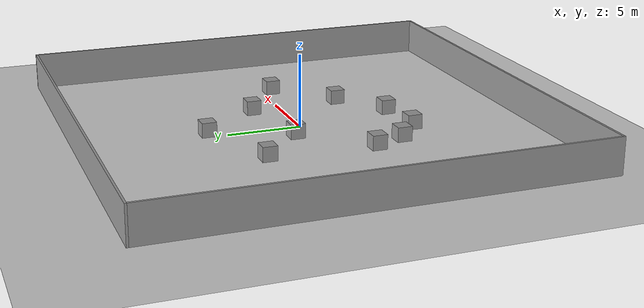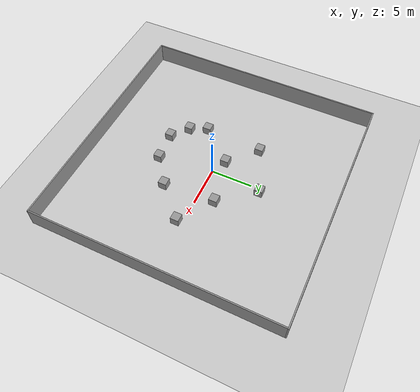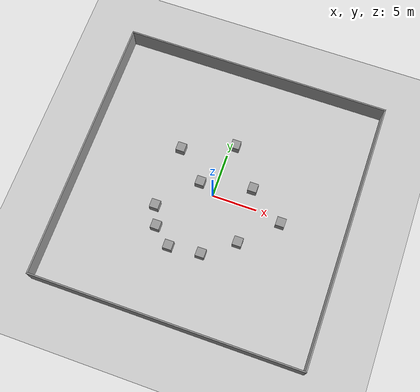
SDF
<sdf version="1.7">
 <world name="default">
  <light name="sun" type="directional">
   <pose>0 0 10 0 -0 0</pose>
   <diffuse>0.8 0.8 0.8 1</diffuse>
   <specular>0.2 0.2 0.2 1</specular>
   <attenuation>
    <range>1000</range>
    <constant>0.9</constant>
    <linear>0.01</linear>
    <quadratic>0.001</quadratic>
   </attenuation>
   <direction>-0.5 0.1 -0.9</direction>
   <spot><inner_angle>0</inner_angle><outer_angle>0</outer_angle><falloff>0</falloff></spot>
  </light>
  <model name="ground_plane">
   <static>1</static>
   <link name="link">
    <collision name="collision">
     <geometry><plane><normal>0 0 1</normal><size>100 100</size></plane></geometry>
     <surface><friction><ode><mu>100</mu><mu2>50</mu2></ode></friction></surface>
    </collision>
    <visual name="visual">
     <cast_shadows>0</cast_shadows>
     <geometry><plane><normal>0 0 1</normal><size>100 100</size></plane></geometry>
     <material>
      <script><uri>file://media/materials/scripts/gazebo.material</uri><name>Gazebo/Grey</name></script>
     </material>
    </visual>
   </link>
  </model>
  <gravity>0 0 -9.8</gravity>
  <magnetic_field>6e-06 2.3e-05 -4.2e-05</magnetic_field>
  <atmosphere type="adiabatic"/>
  <physics type="ode">
   <max_step_size>0.001</max_step_size>
   <real_time_factor>1</real_time_factor>
   <real_time_update_rate>1000</real_time_update_rate>
  </physics>
  <scene><ambient>0.4 0.4 0.4 1</ambient><background>0.7 0.7 0.7 1</background><shadows>1</shadows></scene>
  <spherical_coordinates>
   <surface_model>EARTH_WGS84</surface_model>
   <latitude_deg>0</latitude_deg>
   <longitude_deg>0</longitude_deg>
   <elevation>0</elevation>
   <heading_deg>0</heading_deg>
  </spherical_coordinates>
  <model name="models">
   <link name="Wall_0">
    <collision name="Wall_0_Collision">
     <geometry><box><size>30.15 0.15 2.5</size></box></geometry>
     <pose>0 0 1.25 0 -0 0</pose>
    </collision>
    <visual name="Wall_0_Visual">
     <pose>0 0 1.25 0 -0 0</pose>
     <geometry><box><size>30.15 0.15 2.5</size></box></geometry>
     <material>
      <script><uri>file://media/materials/scripts/gazebo.material</uri><name>Gazebo/Grey</name></script>
      <ambient>1 1 1 1</ambient>
     </material>
     <meta><layer>0</layer></meta>
    </visual>
    <pose>0 -15 0 0 -0 0</pose>
   </link>
   <link name="Wall_1">
    <collision name="Wall_1_Collision">
     <geometry><box><size>30.15 0.15 2.5</size></box></geometry>
     <pose>0 0 1.25 0 -0 0</pose>
    </collision>
    <visual name="Wall_1_Visual">
     <pose>0 0 1.25 0 -0 0</pose>
     <geometry><box><size>30.15 0.15 2.5</size></box></geometry>
     <material>
      <script><uri>file://media/materials/scripts/gazebo.material</uri><name>Gazebo/Grey</name></script>
      <ambient>1 1 1 1</ambient>
     </material>
     <meta><layer>0</layer></meta>
    </visual>
    <pose>15 0 0 0 -0 1.5708</pose>
   </link>
   <link name="Wall_2">
    <collision name="Wall_2_Collision">
     <geometry><box><size>30.15 0.15 2.5</size></box></geometry>
     <pose>0 0 1.25 0 -0 0</pose>
    </collision>
    <visual name="Wall_2_Visual">
     <pose>0 0 1.25 0 -0 0</pose>
     <geometry><box><size>30.15 0.15 2.5</size></box></geometry>
     <material>
      <script><uri>file://media/materials/scripts/gazebo.material</uri><name>Gazebo/Grey</name></script>
      <ambient>1 1 1 1</ambient>
     </material>
     <meta><layer>0</layer></meta>
    </visual>
    <pose>0 15 0 0 -0 3.14159</pose>
   </link>
   <link name="Wall_3">
    <collision name="Wall_3_Collision">
     <geometry><box><size>30.15 0.15 2.5</size></box></geometry>
     <pose>0 0 1.25 0 -0 0</pose>
    </collision>
    <visual name="Wall_3_Visual">
     <pose>0 0 1.25 0 -0 0</pose>
     <geometry><box><size>30.15 0.15 2.5</size></box></geometry>
     <material>
      <script><uri>file://media/materials/scripts/gazebo.material</uri><name>Gazebo/Grey</name></script>
      <ambient>1 1 1 1</ambient>
     </material>
     <meta><layer>0</layer></meta>
    </visual>
    <pose>-15 0 0 0 -0 -1.5708</pose>
   </link>
   <static>1</static>
  </model>
  <model name="box">
   <link name="link">
    <inertial>
     <mass>1</mass>
     <inertia>
      <ixx>0.166667</ixx>
      <ixy>0</ixy>
      <ixz>0</ixz>
      <iyy>0.166667</iyy>
      <iyz>0</iyz>
      <izz>0.166667</izz>
     </inertia>
    </inertial>
    <visual name="visual">
     <geometry><box><size>1 1 1</size></box></geometry>
     <material>
      <script><name>Gazebo/Grey</name><uri>file://media/materials/scripts/gazebo.material</uri></script>
      <shader type="pixel"/>
     </material>
    </visual>
    <collision name="collision">
     <geometry><box><size>1 1 1</size></box></geometry>
     <surface>
      <friction>
       <ode><mu>1</mu><mu2>1</mu2><fdir1>0 0 0</fdir1><slip1>0</slip1><slip2>0</slip2></ode>
       <torsional>
        <coefficient>1</coefficient>
        <patch_radius>0</patch_radius>
        <surface_radius>0</surface_radius>
        <use_patch_radius>1</use_patch_radius>
        <ode><slip>0</slip></ode>
       </torsional>
      </friction>
      <bounce><restitution_coefficient>0</restitution_coefficient><threshold>1e+06</threshold></bounce>
      <contact>
       <collide_without_contact>0</collide_without_contact>
       <collide_without_contact_bitmask>1</collide_without_contact_bitmask>
       <collide_bitmask>1</collide_bitmask>
       <ode>
        <soft_cfm>0</soft_cfm>
        <soft_erp>0.2</soft_erp>
        <kp>1e+13</kp>
        <kd>1</kd>
        <max_vel>0.01</max_vel>
        <min_depth>0</min_depth>
       </ode>
       <bullet>
        <split_impulse>1</split_impulse>
        <split_impulse_penetration_threshold>-0.01</split_impulse_penetration_threshold>
        <soft_cfm>0</soft_cfm>
        <soft_erp>0.2</soft_erp>
        <kp>1e+13</kp>
        <kd>1</kd>
       </bullet>
      </contact>
     </surface>
    </collision>
   </link>
   <static>1</static>
   <pose>-5.51987 -3.23651 0.5 0 -0 0</pose>
  </model>
  <model name="box_0">
   <link name="link">
    <inertial>
     <mass>1</mass>
     <inertia>
      <ixx>0.166667</ixx>
      <ixy>0</ixy>
      <ixz>0</ixz>
      <iyy>0.166667</iyy>
      <iyz>0</iyz>
      <izz>0.166667</izz>
     </inertia>
    </inertial>
    <visual name="visual">
     <geometry><box><size>1 1 1</size></box></geometry>
     <material>
      <script><name>Gazebo/Grey</name><uri>file://media/materials/scripts/gazebo.material</uri></script>
      <shader type="pixel"/>
     </material>
    </visual>
    <collision name="collision">
     <geometry><box><size>1 1 1</size></box></geometry>
     <surface>
      <friction>
       <ode><mu>1</mu><mu2>1</mu2><fdir1>0 0 0</fdir1><slip1>0</slip1><slip2>0</slip2></ode>
       <torsional>
        <coefficient>1</coefficient>
        <patch_radius>0</patch_radius>
        <surface_radius>0</surface_radius>
        <use_patch_radius>1</use_patch_radius>
        <ode><slip>0</slip></ode>
       </torsional>
      </friction>
      <bounce><restitution_coefficient>0</restitution_coefficient><threshold>1e+06</threshold></bounce>
      <contact>
       <collide_without_contact>0</collide_without_contact>
       <collide_without_contact_bitmask>1</collide_without_contact_bitmask>
       <collide_bitmask>1</collide_bitmask>
       <ode>
        <soft_cfm>0</soft_cfm>
        <soft_erp>0.2</soft_erp>
        <kp>1e+13</kp>
        <kd>1</kd>
        <max_vel>0.01</max_vel>
        <min_depth>0</min_depth>
       </ode>
       <bullet>
        <split_impulse>1</split_impulse>
        <split_impulse_penetration_threshold>-0.01</split_impulse_penetration_threshold>
        <soft_cfm>0</soft_cfm>
        <soft_erp>0.2</soft_erp>
        <kp>1e+13</kp>
        <kd>1</kd>
       </bullet>
      </contact>
     </surface>
    </collision>
   </link>
   <static>1</static>
   <pose>-2.57721 -7.03754 0.5 0 -0 0</pose>
  </model>
  <model name="box_1">
   <link name="link">
    <inertial>
     <mass>1</mass>
     <inertia>
      <ixx>0.166667</ixx>
      <ixy>0</ixy>
      <ixz>0</ixz>
      <iyy>0.166667</iyy>
      <iyz>0</iyz>
      <izz>0.166667</izz>
     </inertia>
    </inertial>
    <visual name="visual">
     <geometry><box><size>1 1 1</size></box></geometry>
     <material>
      <script><name>Gazebo/Grey</name><uri>file://media/materials/scripts/gazebo.material</uri></script>
      <shader type="pixel"/>
     </material>
    </visual>
    <collision name="collision">
     <geometry><box><size>1 1 1</size></box></geometry>
     <surface>
      <friction>
       <ode><mu>1</mu><mu2>1</mu2><fdir1>0 0 0</fdir1><slip1>0</slip1><slip2>0</slip2></ode>
       <torsional>
        <coefficient>1</coefficient>
        <patch_radius>0</patch_radius>
        <surface_radius>0</surface_radius>
        <use_patch_radius>1</use_patch_radius>
        <ode><slip>0</slip></ode>
       </torsional>
      </friction>
      <bounce><restitution_coefficient>0</restitution_coefficient><threshold>1e+06</threshold></bounce>
      <contact>
       <collide_without_contact>0</collide_without_contact>
       <collide_without_contact_bitmask>1</collide_without_contact_bitmask>
       <collide_bitmask>1</collide_bitmask>
       <ode>
        <soft_cfm>0</soft_cfm>
        <soft_erp>0.2</soft_erp>
        <kp>1e+13</kp>
        <kd>1</kd>
        <max_vel>0.01</max_vel>
        <min_depth>0</min_depth>
       </ode>
       <bullet>
        <split_impulse>1</split_impulse>
        <split_impulse_penetration_threshold>-0.01</split_impulse_penetration_threshold>
        <soft_cfm>0</soft_cfm>
        <soft_erp>0.2</soft_erp>
        <kp>1e+13</kp>
        <kd>1</kd>
       </bullet>
      </contact>
     </surface>
    </collision>
   </link>
   <static>1</static>
   <pose>-5.13075 3.96787 0.5 0 -0 0</pose>
  </model>
  <model name="box_2">
   <link name="link">
    <inertial>
     <mass>1</mass>
     <inertia>
      <ixx>0.166667</ixx>
      <ixy>0</ixy>
      <ixz>0</ixz>
      <iyy>0.166667</iyy>
      <iyz>0</iyz>
      <izz>0.166667</izz>
     </inertia>
    </inertial>
    <visual name="visual">
     <geometry><box><size>1 1 1</size></box></geometry>
     <material>
      <script><name>Gazebo/Grey</name><uri>file://media/materials/scripts/gazebo.material</uri></script>
      <shader type="pixel"/>
     </material>
    </visual>
    <collision name="collision">
     <geometry><box><size>1 1 1</size></box></geometry>
     <surface>
      <friction>
       <ode><mu>1</mu><mu2>1</mu2><fdir1>0 0 0</fdir1><slip1>0</slip1><slip2>0</slip2></ode>
       <torsional>
        <coefficient>1</coefficient>
        <patch_radius>0</patch_radius>
        <surface_radius>0</surface_radius>
        <use_patch_radius>1</use_patch_radius>
        <ode><slip>0</slip></ode>
       </torsional>
      </friction>
      <bounce><restitution_coefficient>0</restitution_coefficient><threshold>1e+06</threshold></bounce>
      <contact>
       <collide_without_contact>0</collide_without_contact>
       <collide_without_contact_bitmask>1</collide_without_contact_bitmask>
       <collide_bitmask>1</collide_bitmask>
       <ode>
        <soft_cfm>0</soft_cfm>
        <soft_erp>0.2</soft_erp>
        <kp>1e+13</kp>
        <kd>1</kd>
        <max_vel>0.01</max_vel>
        <min_depth>0</min_depth>
       </ode>
       <bullet>
        <split_impulse>1</split_impulse>
        <split_impulse_penetration_threshold>-0.01</split_impulse_penetration_threshold>
        <soft_cfm>0</soft_cfm>
        <soft_erp>0.2</soft_erp>
        <kp>1e+13</kp>
        <kd>1</kd>
       </bullet>
      </contact>
     </surface>
    </collision>
   </link>
   <static>1</static>
   <pose>3.92251 2.06867 0.5 0 -0 0</pose>
  </model>
  <model name="box_3">
   <link name="link">
    <inertial>
     <mass>1</mass>
     <inertia>
      <ixx>0.166667</ixx>
      <ixy>0</ixy>
      <ixz>0</ixz>
      <iyy>0.166667</iyy>
      <iyz>0</iyz>
      <izz>0.166667</izz>
     </inertia>
    </inertial>
    <visual name="visual">
     <geometry><box><size>1 1 1</size></box></geometry>
     <material>
      <script><name>Gazebo/Grey</name><uri>file://media/materials/scripts/gazebo.material</uri></script>
      <shader type="pixel"/>
     </material>
    </visual>
    <collision name="collision">
     <geometry><box><size>1 1 1</size></box></geometry>
     <surface>
      <friction>
       <ode><mu>1</mu><mu2>1</mu2><fdir1>0 0 0</fdir1><slip1>0</slip1><slip2>0</slip2></ode>
       <torsional>
        <coefficient>1</coefficient>
        <patch_radius>0</patch_radius>
        <surface_radius>0</surface_radius>
        <use_patch_radius>1</use_patch_radius>
        <ode><slip>0</slip></ode>
       </torsional>
      </friction>
      <bounce><restitution_coefficient>0</restitution_coefficient><threshold>1e+06</threshold></bounce>
      <contact>
       <collide_without_contact>0</collide_without_contact>
       <collide_without_contact_bitmask>1</collide_without_contact_bitmask>
       <collide_bitmask>1</collide_bitmask>
       <ode>
        <soft_cfm>0</soft_cfm>
        <soft_erp>0.2</soft_erp>
        <kp>1e+13</kp>
        <kd>1</kd>
        <max_vel>0.01</max_vel>
        <min_depth>0</min_depth>
       </ode>
       <bullet>
        <split_impulse>1</split_impulse>
        <split_impulse_penetration_threshold>-0.01</split_impulse_penetration_threshold>
        <soft_cfm>0</soft_cfm>
        <soft_erp>0.2</soft_erp>
        <kp>1e+13</kp>
        <kd>1</kd>
       </bullet>
      </contact>
     </surface>
    </collision>
   </link>
   <static>1</static>
   <pose>4.29376 -4.2413 0.5 0 -0 0</pose>
  </model>
  <model name="box_4">
   <link name="link">
    <inertial>
     <mass>1</mass>
     <inertia>
      <ixx>0.166667</ixx>
      <ixy>0</ixy>
      <ixz>0</ixz>
      <iyy>0.166667</iyy>
      <iyz>0</iyz>
      <izz>0.166667</izz>
     </inertia>
    </inertial>
    <visual name="visual">
     <geometry><box><size>1 1 1</size></box></geometry>
     <material>
      <script><name>Gazebo/Grey</name><uri>file://media/materials/scripts/gazebo.material</uri></script>
      <shader type="pixel"/>
     </material>
    </visual>
    <collision name="collision">
     <geometry><box><size>1 1 1</size></box></geometry>
     <surface>
      <friction>
       <ode><mu>1</mu><mu2>1</mu2><fdir1>0 0 0</fdir1><slip1>0</slip1><slip2>0</slip2></ode>
       <torsional>
        <coefficient>1</coefficient>
        <patch_radius>0</patch_radius>
        <surface_radius>0</surface_radius>
        <use_patch_radius>1</use_patch_radius>
        <ode><slip>0</slip></ode>
       </torsional>
      </friction>
      <bounce><restitution_coefficient>0</restitution_coefficient><threshold>1e+06</threshold></bounce>
      <contact>
       <collide_without_contact>0</collide_without_contact>
       <collide_without_contact_bitmask>1</collide_without_contact_bitmask>
       <collide_bitmask>1</collide_bitmask>
       <ode>
        <soft_cfm>0</soft_cfm>
        <soft_erp>0.2</soft_erp>
        <kp>1e+13</kp>
        <kd>1</kd>
        <max_vel>0.01</max_vel>
        <min_depth>0</min_depth>
       </ode>
       <bullet>
        <split_impulse>1</split_impulse>
        <split_impulse_penetration_threshold>-0.01</split_impulse_penetration_threshold>
        <soft_cfm>0</soft_cfm>
        <soft_erp>0.2</soft_erp>
        <kp>1e+13</kp>
        <kd>1</kd>
       </bullet>
      </contact>
     </surface>
    </collision>
   </link>
   <static>1</static>
   <pose>0.980259 -6.69727 0.5 0 -0 0</pose>
  </model>
  <model name="box_5">
   <link name="link">
    <inertial>
     <mass>1</mass>
     <inertia>
      <ixx>0.166667</ixx>
      <ixy>0</ixy>
      <ixz>0</ixz>
      <iyy>0.166667</iyy>
      <iyz>0</iyz>
      <izz>0.166667</izz>
     </inertia>
    </inertial>
    <visual name="visual">
     <geometry><box><size>1 1 1</size></box></geometry>
     <material>
      <script><name>Gazebo/Grey</name><uri>file://media/materials/scripts/gazebo.material</uri></script>
      <shader type="pixel"/>
     </material>
    </visual>
    <collision name="collision">
     <geometry><box><size>1 1 1</size></box></geometry>
     <surface>
      <friction>
       <ode><mu>1</mu><mu2>1</mu2><fdir1>0 0 0</fdir1><slip1>0</slip1><slip2>0</slip2></ode>
       <torsional>
        <coefficient>1</coefficient>
        <patch_radius>0</patch_radius>
        <surface_radius>0</surface_radius>
        <use_patch_radius>1</use_patch_radius>
        <ode><slip>0</slip></ode>
       </torsional>
      </friction>
      <bounce><restitution_coefficient>0</restitution_coefficient><threshold>1e+06</threshold></bounce>
      <contact>
       <collide_without_contact>0</collide_without_contact>
       <collide_without_contact_bitmask>1</collide_without_contact_bitmask>
       <collide_bitmask>1</collide_bitmask>
       <ode>
        <soft_cfm>0</soft_cfm>
        <soft_erp>0.2</soft_erp>
        <kp>1e+13</kp>
        <kd>1</kd>
        <max_vel>0.01</max_vel>
        <min_depth>0</min_depth>
       </ode>
       <bullet>
        <split_impulse>1</split_impulse>
        <split_impulse_penetration_threshold>-0.01</split_impulse_penetration_threshold>
        <soft_cfm>0</soft_cfm>
        <soft_erp>0.2</soft_erp>
        <kp>1e+13</kp>
        <kd>1</kd>
       </bullet>
      </contact>
     </surface>
    </collision>
   </link>
   <static>1</static>
   <pose>-1.7575 0.902441 0.5 0 -0 0</pose>
  </model>
  <model name="box_6">
   <link name="link">
    <inertial>
     <mass>1</mass>
     <inertia>
      <ixx>0.166667</ixx>
      <ixy>0</ixy>
      <ixz>0</ixz>
      <iyy>0.166667</iyy>
      <iyz>0</iyz>
      <izz>0.166667</izz>
     </inertia>
    </inertial>
    <visual name="visual">
     <geometry><box><size>1 1 1</size></box></geometry>
     <material>
      <script><name>Gazebo/Grey</name><uri>file://media/materials/scripts/gazebo.material</uri></script>
      <shader type="pixel"/>
     </material>
    </visual>
    <collision name="collision">
     <geometry><box><size>1 1 1</size></box></geometry>
     <surface>
      <friction>
       <ode><mu>1</mu><mu2>1</mu2><fdir1>0 0 0</fdir1><slip1>0</slip1><slip2>0</slip2></ode>
       <torsional>
        <coefficient>1</coefficient>
        <patch_radius>0</patch_radius>
        <surface_radius>0</surface_radius>
        <use_patch_radius>1</use_patch_radius>
        <ode><slip>0</slip></ode>
       </torsional>
      </friction>
      <bounce><restitution_coefficient>0</restitution_coefficient><threshold>1e+06</threshold></bounce>
      <contact>
       <collide_without_contact>0</collide_without_contact>
       <collide_without_contact_bitmask>1</collide_without_contact_bitmask>
       <collide_bitmask>1</collide_bitmask>
       <ode>
        <soft_cfm>0</soft_cfm>
        <soft_erp>0.2</soft_erp>
        <kp>1e+13</kp>
        <kd>1</kd>
        <max_vel>0.01</max_vel>
        <min_depth>0</min_depth>
       </ode>
       <bullet>
        <split_impulse>1</split_impulse>
        <split_impulse_penetration_threshold>-0.01</split_impulse_penetration_threshold>
        <soft_cfm>0</soft_cfm>
        <soft_erp>0.2</soft_erp>
        <kp>1e+13</kp>
        <kd>1</kd>
       </bullet>
      </contact>
     </surface>
    </collision>
   </link>
   <static>1</static>
   <pose>-4.60938 -5.37226 0.5 0 -0 0</pose>
  </model>
  <model name="box_7">
   <link name="link">
    <inertial>
     <mass>1</mass>
     <inertia>
      <ixx>0.166667</ixx>
      <ixy>0</ixy>
      <ixz>0</ixz>
      <iyy>0.166667</iyy>
      <iyz>0</iyz>
      <izz>0.166667</izz>
     </inertia>
    </inertial>
    <visual name="visual">
     <geometry><box><size>1 1 1</size></box></geometry>
     <material>
      <script><name>Gazebo/Grey</name><uri>file://media/materials/scripts/gazebo.material</uri></script>
      <shader type="pixel"/>
     </material>
    </visual>
    <collision name="collision">
     <geometry><box><size>1 1 1</size></box></geometry>
     <surface>
      <friction>
       <ode><mu>1</mu><mu2>1</mu2><fdir1>0 0 0</fdir1><slip1>0</slip1><slip2>0</slip2></ode>
       <torsional>
        <coefficient>1</coefficient>
        <patch_radius>0</patch_radius>
        <surface_radius>0</surface_radius>
        <use_patch_radius>1</use_patch_radius>
        <ode><slip>0</slip></ode>
       </torsional>
      </friction>
      <bounce><restitution_coefficient>0</restitution_coefficient><threshold>1e+06</threshold></bounce>
      <contact>
       <collide_without_contact>0</collide_without_contact>
       <collide_without_contact_bitmask>1</collide_without_contact_bitmask>
       <collide_bitmask>1</collide_bitmask>
       <ode>
        <soft_cfm>0</soft_cfm>
        <soft_erp>0.2</soft_erp>
        <kp>1e+13</kp>
        <kd>1</kd>
        <max_vel>0.01</max_vel>
        <min_depth>0</min_depth>
       </ode>
       <bullet>
        <split_impulse>1</split_impulse>
        <split_impulse_penetration_threshold>-0.01</split_impulse_penetration_threshold>
        <soft_cfm>0</soft_cfm>
        <soft_erp>0.2</soft_erp>
        <kp>1e+13</kp>
        <kd>1</kd>
       </bullet>
      </contact>
     </surface>
    </collision>
   </link>
   <static>1</static>
   <pose>0.510531 6.23842 0.5 0 -0 0</pose>
  </model>
  <model name="box_8">
   <link name="link">
    <inertial>
     <mass>1</mass>
     <inertia>
      <ixx>0.166667</ixx>
      <ixy>0</ixy>
      <ixz>0</ixz>
      <iyy>0.166667</iyy>
      <iyz>0</iyz>
      <izz>0.166667</izz>
     </inertia>
    </inertial>
    <visual name="visual">
     <geometry><box><size>1 1 1</size></box></geometry>
     <material>
      <script><name>Gazebo/Grey</name><uri>file://media/materials/scripts/gazebo.material</uri></script>
      <shader type="pixel"/>
     </material>
    </visual>
    <collision name="collision">
     <geometry><box><size>1 1 1</size></box></geometry>
     <surface>
      <friction>
       <ode><mu>1</mu><mu2>1</mu2><fdir1>0 0 0</fdir1><slip1>0</slip1><slip2>0</slip2></ode>
       <torsional>
        <coefficient>1</coefficient>
        <patch_radius>0</patch_radius>
        <surface_radius>0</surface_radius>
        <use_patch_radius>1</use_patch_radius>
        <ode><slip>0</slip></ode>
       </torsional>
      </friction>
      <bounce><restitution_coefficient>0</restitution_coefficient><threshold>1e+06</threshold></bounce>
      <contact>
       <collide_without_contact>0</collide_without_contact>
       <collide_without_contact_bitmask>1</collide_without_contact_bitmask>
       <collide_bitmask>1</collide_bitmask>
       <ode>
        <soft_cfm>0</soft_cfm>
        <soft_erp>0.2</soft_erp>
        <kp>1e+13</kp>
        <kd>1</kd>
        <max_vel>0.01</max_vel>
        <min_depth>0</min_depth>
       </ode>
       <bullet>
        <split_impulse>1</split_impulse>
        <split_impulse_penetration_threshold>-0.01</split_impulse_penetration_threshold>
        <soft_cfm>0</soft_cfm>
        <soft_erp>0.2</soft_erp>
        <kp>1e+13</kp>
        <kd>1</kd>
       </bullet>
      </contact>
     </surface>
    </collision>
   </link>
   <static>1</static>
   <pose>7.98127 -0.680345 0.5 0 -0 0</pose>
  </model>
 </world>
</sdf>
